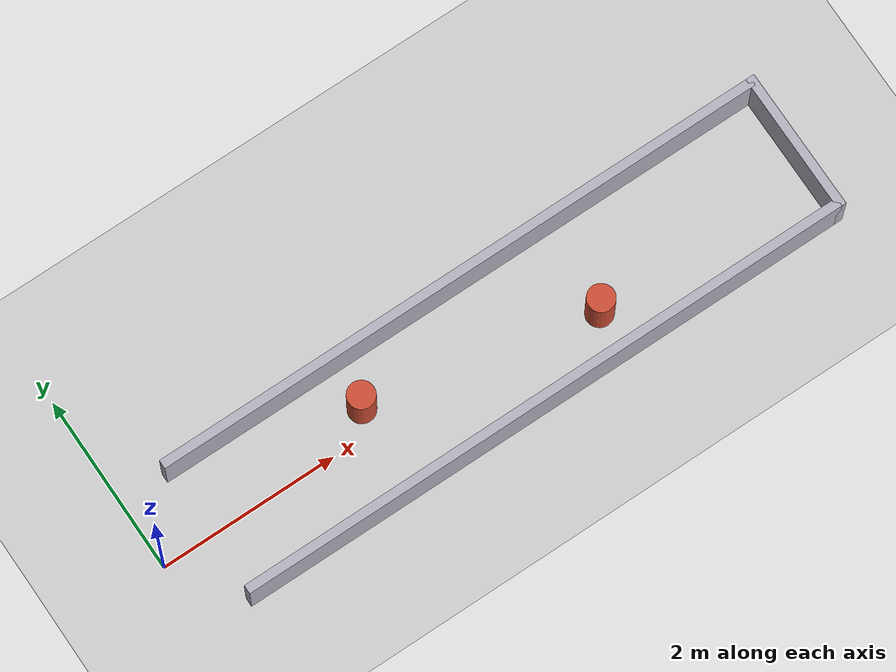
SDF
<?xml version="1.0"?>
<sdf version="1.9">
  <world name="quadruped_corridor">
    <physics name="1ms" type="ignored">
      <max_step_size>0.001</max_step_size>
      <real_time_factor>1.0</real_time_factor>
    </physics>

    <plugin filename="gz-sim-physics-system"
            name="gz::sim::systems::Physics"/>
    <plugin filename="gz-sim-user-commands-system"
            name="gz::sim::systems::UserCommands"/>
    <plugin filename="gz-sim-scene-broadcaster-system"
            name="gz::sim::systems::SceneBroadcaster"/>
    <plugin filename="gz-sim-sensors-system"
            name="gz::sim::systems::Sensors">
      <render_engine>ogre2</render_engine>
    </plugin>
    <plugin filename="gz-sim-contact-system"
            name="gz::sim::systems::Contact"/>

    <scene>
      <ambient>1 1 1 1</ambient>
      <background>0.3 0.7 0.9 1</background>
      <shadows>false</shadows>
    </scene>

    <light type="directional" name="sun">
      <pose>0 0 10 0 0 0</pose>
      <diffuse>0.8 0.8 0.8 1</diffuse>
      <specular>0.2 0.2 0.2 1</specular>
      <direction>-0.5 0.1 -0.9</direction>
    </light>

    <model name="ground_plane">
      <static>true</static>
      <link name="link">
        <collision name="collision">
          <geometry>
            <plane><normal>0 0 1</normal><size>100 100</size></plane>
          </geometry>
        </collision>
        <visual name="visual">
          <geometry>
            <plane><normal>0 0 1</normal><size>100 100</size></plane>
          </geometry>
          <material>
            <ambient>0.8 0.8 0.8 1</ambient>
            <diffuse>0.8 0.8 0.8 1</diffuse>
          </material>
        </visual>
      </link>
    </model>

    <model name="left_wall">
      <static>true</static>
      <pose>4.0  0.75 0.30 0 0 0</pose>
      <link name="link">
        <collision name="collision">
          <geometry><box><size>7.0 0.1 0.6</size></box></geometry>
        </collision>
        <visual name="visual">
          <geometry><box><size>7.0 0.1 0.6</size></box></geometry>
          <material>
            <ambient>0.7 0.7 0.75 1</ambient>
            <diffuse>0.7 0.7 0.75 1</diffuse>
          </material>
        </visual>
      </link>
    </model>

    <model name="right_wall">
      <static>true</static>
      <pose>4.0 -0.75 0.30 0 0 0</pose>
      <link name="link">
        <collision name="collision">
          <geometry><box><size>7.0 0.1 0.6</size></box></geometry>
        </collision>
        <visual name="visual">
          <geometry><box><size>7.0 0.1 0.6</size></box></geometry>
          <material>
            <ambient>0.7 0.7 0.75 1</ambient>
            <diffuse>0.7 0.7 0.75 1</diffuse>
          </material>
        </visual>
      </link>
    </model>

    <model name="back_wall">
      <static>true</static>
      <pose>7.5 0.0 0.30 0 0 0</pose>
      <link name="link">
        <collision name="collision">
          <geometry><box><size>0.1 1.6 0.6</size></box></geometry>
        </collision>
        <visual name="visual">
          <geometry><box><size>0.1 1.6 0.6</size></box></geometry>
          <material>
            <ambient>0.7 0.7 0.75 1</ambient>
            <diffuse>0.7 0.7 0.75 1</diffuse>
          </material>
        </visual>
      </link>
    </model>

    <model name="obstaculo_1">
      <static>true</static>
      <pose>2.5  0.25 0.30 0 0 0</pose>
      <link name="link">
        <collision name="collision">
          <geometry><cylinder><radius>0.15</radius><length>0.6</length></cylinder></geometry>
        </collision>
        <visual name="visual">
          <geometry><cylinder><radius>0.15</radius><length>0.6</length></cylinder></geometry>
          <material>
            <ambient>0.8 0.3 0.2 1</ambient>
            <diffuse>0.8 0.3 0.2 1</diffuse>
          </material>
        </visual>
      </link>
    </model>

    <model name="obstaculo_2">
      <static>true</static>
      <pose>5.0 -0.25 0.30 0 0 0</pose>
      <link name="link">
        <collision name="collision">
          <geometry><cylinder><radius>0.15</radius><length>0.6</length></cylinder></geometry>
        </collision>
        <visual name="visual">
          <geometry><cylinder><radius>0.15</radius><length>0.6</length></cylinder></geometry>
          <material>
            <ambient>0.8 0.3 0.2 1</ambient>
            <diffuse>0.8 0.3 0.2 1</diffuse>
          </material>
        </visual>
      </link>
    </model>
  </world>
</sdf>
